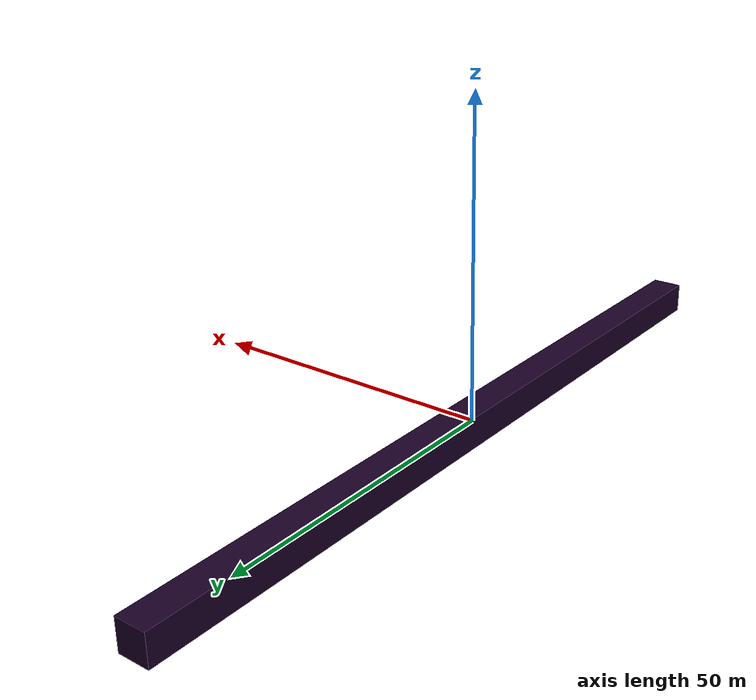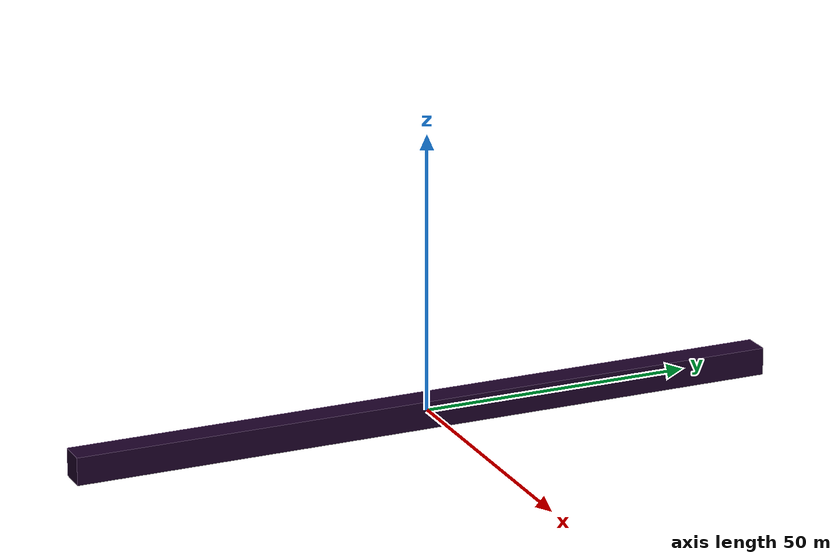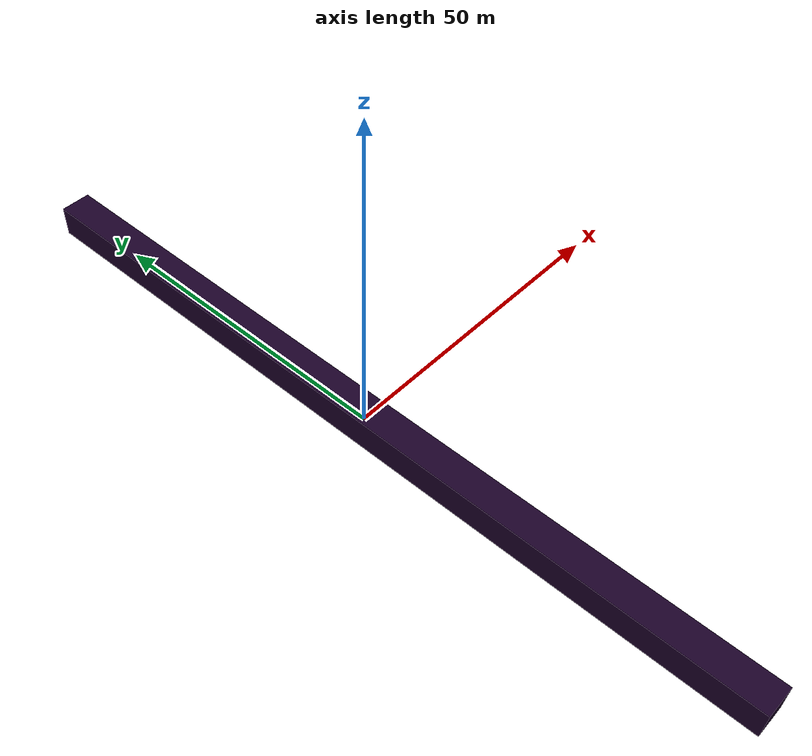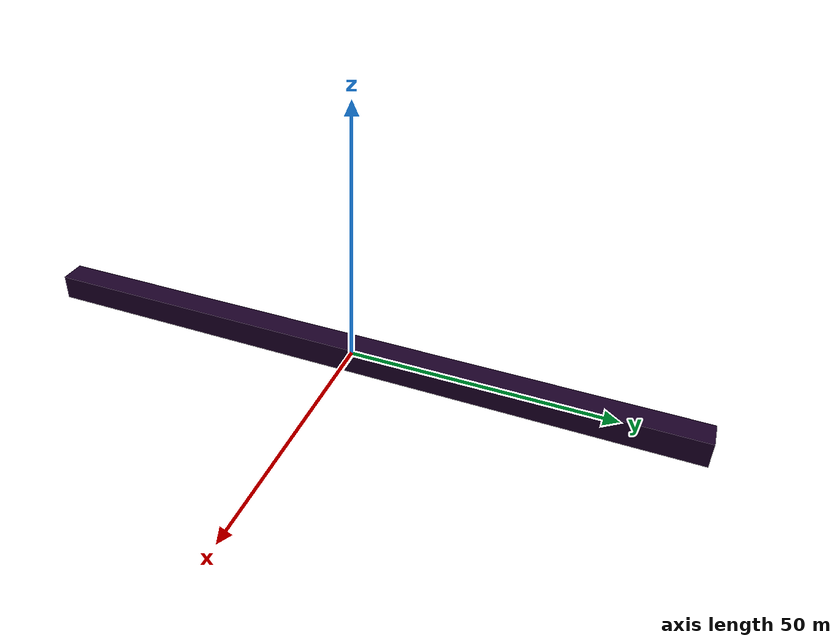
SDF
<?xml version="1.0"?>
<sdf version="1.10">
    <model name='Wall'>
        <link name='box_link'>
            <inertial>
                <inertia>
                    <ixx>0.16666</ixx>
                    <ixy>0</ixy>
                    <ixz>0</ixz>
                    <iyy>0.16666</iyy>
                    <iyz>0</iyz>
                    <izz>0.16666</izz>
                </inertia>
                <mass>1</mass>
                <pose>0 0 0 0 0 0</pose>
            </inertial>
            <collision name='box_collision'>
                <geometry>
                    <box>
                        <size>5 150 5</size>
                    </box>
                </geometry>
                <surface>
                    <friction>
                        <ode />
                    </friction>
                    <bounce />
                    <contact />
                </surface>
            </collision>
            <visual name='box_visual'>
                <geometry>
                    <box>
                        <size>5 130 5</size>
                    </box>
                </geometry>
                <material>
                    <ambient>0.1 0.0 0.15 1</ambient>
                    <diffuse>0.1 0.0 0.15 1</diffuse>
                    <specular>1 1 1 1</specular>
                </material>
            </visual>
            <pose>0 0 0 0 0 0</pose>
            <enable_wind>false</enable_wind>
        </link>
        <static>false</static>
        <self_collide>false</self_collide>
    </model>
</sdf>
